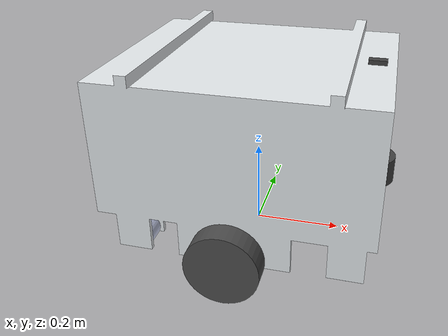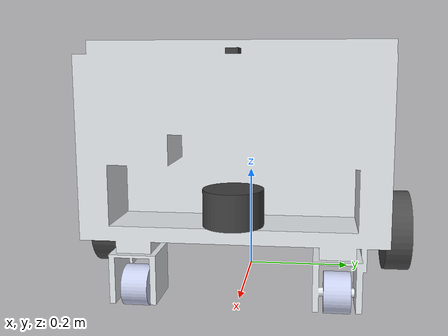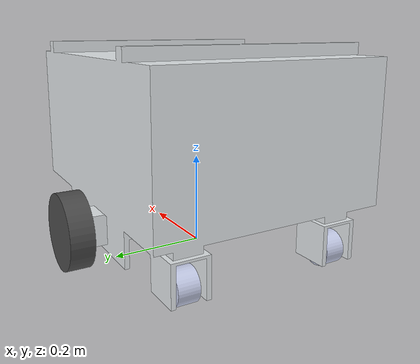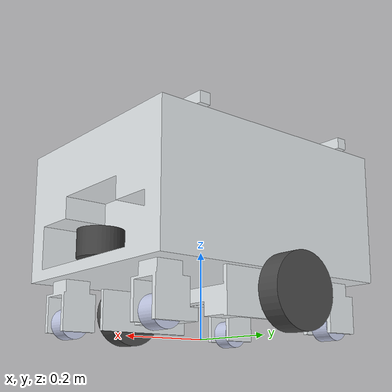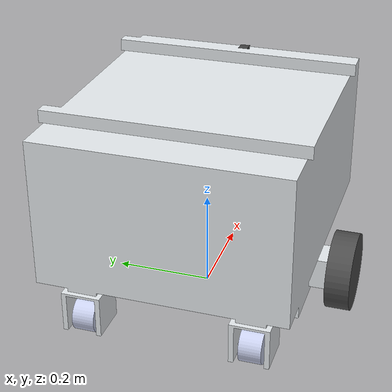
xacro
<?xml version="1.0" ?>
<robot name="custom_amr" xmlns:xacro="http://ros.org/wiki/xacro">
  <xacro:include filename="$(find amr_description)/urdf/common_properties.xacro"/>
  <xacro:include filename="$(find amr_description)/urdf/amr_description.gazebo.xacro"/>

  <link
    name="base_link">
    <inertial>
      <origin
        xyz="-0.013982 5.5511E-17 0.27616"
        rpy="0 0 0" />
      <mass
        value="240.87" />
      <inertia
        ixx="7.4151"
        ixy="1.9392E-15"
        ixz="-0.1905"
        iyy="8.8252"
        iyz="1.029E-16"
        izz="11.883" />
    </inertial>
    <visual>
      <origin
        xyz="0 0 0"
        rpy="0 0 0" />
      <geometry>
        <mesh
          filename="package://amr_description/meshes_2/base_link.STL" />
      </geometry>
      <material
        name="">
        <color
          rgba="0.89804 0.91765 0.92941 1" />
      </material>
    </visual>
    <collision>
      <origin
        xyz="0 0 0"
        rpy="0 0 0" />
      <geometry>
        <mesh
          filename="package://amr_description/meshes_2/base_link.STL" />
      </geometry>
    </collision>
  </link>
<!-- Left Wheels -->
<joint
    name="left_wheel_joint"
    type="continuous">
    <origin
      xyz="0 0.295 0.0795114208001933"
      rpy="0 0 0" />
    <parent
      link="base_link" />
    <child
      link="left_wheel" />
    <axis
      xyz="0 1 0" />
  </joint>

<link
name="left_wheel">
<inertial>
  <origin
    xyz="-5.55111512312578E-17 -0.000574712643678116 0"
    rpy="0 0 0" />
  <mass
    value="1.02494460323367" />
  <inertia
    ixx="0.00183849946005578"
    ixy="2.56637004041976E-19"
    ixz="6.63260987832101E-22"
    iyy="0.0032231268004275"
    iyz="-2.35172790845663E-21"
    izz="0.00183849946005578" />
</inertial>
<visual>
  <origin
    xyz="0 0 0"
    rpy="0 0 0" />
  <geometry>
    <mesh
      filename="package://amr_description/meshes_2/left_wheel.STL" />
  </geometry>
  <material
    name="">
    <color
      rgba="0.298039215686275 0.298039215686275 0.298039215686275 1" />
  </material>
</visual>
<collision>
  <origin
    xyz="0 0 0"
    rpy="0 0 0" />
  <geometry>
    <mesh
      filename="package://amr_description/meshes_2/left_wheel.STL" />
  </geometry>
</collision>
</link>

<!-- Right Wheel -->
<joint
    name="right_wheel_joint"
    type="continuous">
    <origin
      xyz="0 -0.295 0.0795114208001933"
      rpy="0 0 0" />
    <parent
      link="base_link" />
    <child
      link="right_wheel" />
    <axis
      xyz="0 1 0" />
  </joint>

<link
name="right_wheel">
<inertial>
  <origin
    xyz="0 0.000574712643678033 0"
    rpy="0 0 0" />
  <mass
    value="1.02494460323367" />
  <inertia
    ixx="0.00183849946005574"
    ixy="2.53679317773136E-19"
    ixz="-2.77800336919809E-20"
    iyy="0.0032231268004275"
    iyz="2.72448212357285E-20"
    izz="0.00183849946005574" />
</inertial>
<visual>
  <origin
    xyz="0 0 0"
    rpy="0 0 0" />
  <geometry>
    <mesh
      filename="package://amr_description/meshes_2/right_wheel.STL" />
  </geometry>
  <material
    name="">
    <color
      rgba="0.298039215686275 0.298039215686275 0.298039215686275 1" />
  </material>
</visual>
<collision>
  <origin
    xyz="0 0 0"
    rpy="0 0 0" />
  <geometry>
    <mesh
      filename="package://amr_description/meshes_2/right_wheel.STL" />
  </geometry>
</collision>
</link>

<!-- Casters front, back, right, left-->

<link
    name="front_right_caster_link">
    <inertial>
      <origin
        xyz="0 0 0"
        rpy="0 0 0" />
      <mass
        value="0.165228138624738" />
      <inertia
        ixx="8.08068865461608E-05"
        ixy="4.79259162819995E-21"
        ixz="1.82505431197023E-35"
        iyy="0.000105849276306473"
        iyz="8.39342182092113E-20"
        izz="8.08068865461609E-05" />
    </inertial>
    <visual>
      <origin
        xyz="0 0 0"
        rpy="0 0 0" />
      <geometry>
        <mesh
          filename="package://amr_description/meshes_2/front_right_caster_link.STL" />
      </geometry>
      <material
        name="">
        <color
          rgba="0.792156862745098 0.819607843137255 0.933333333333333 1" />
      </material>
    </visual>
    <collision>
      <origin
        xyz="0 0 0"
        rpy="0 0 0" />
      <geometry>
        <mesh
          filename="package://amr_description/meshes_2/front_right_caster_link.STL" />
      </geometry>
    </collision>
  </link>
  <joint
    name="front_right_caster_joint"
    type="fixed">
    <origin
      xyz="0.24 -0.170500000000001 0.0345114208001912"
      rpy="0 0 0" />
    <parent
      link="base_link" />
    <child
      link="front_right_caster_link" />
    <axis
      xyz="0 0 0" />
  </joint>
  <link
    name="front_left_caster_link">
    <inertial>
      <origin
        xyz="0 -5.55111512312578E-17 -2.77555756156289E-17"
        rpy="0 0 0" />
      <mass
        value="0.165228138624738" />
      <inertia
        ixx="8.08068865461611E-05"
        ixy="7.41309980876794E-21"
        ixz="-5.57366493454268E-37"
        iyy="0.000105849276306473"
        iyz="8.39342182092112E-20"
        izz="8.08068865461611E-05" />
    </inertial>
    <visual>
      <origin
        xyz="0 0 0"
        rpy="0 0 0" />
      <geometry>
        <mesh
          filename="package://amr_description/meshes_2/front_left_caster_link.STL" />
      </geometry>
      <material
        name="">
        <color
          rgba="0.792156862745098 0.819607843137255 0.933333333333333 1" />
      </material>
    </visual>
    <collision>
      <origin
        xyz="0 0 0"
        rpy="0 0 0" />
      <geometry>
        <mesh
          filename="package://amr_description/meshes_2/front_left_caster_link.STL" />
      </geometry>
    </collision>
  </link>
  <joint
    name="front_left_caster_joint"
    type="fixed">
    <origin
      xyz="0.24 0.170499999999999 0.0345114208001924"
      rpy="0 0 0" />
    <parent
      link="base_link" />
    <child
      link="front_left_caster_link" />
    <axis
      xyz="0 0 0" />
  </joint>
  <link
    name="back_right_caster_link">
    <inertial>
      <origin
        xyz="0 0 0"
        rpy="0 0 0" />
      <mass
        value="0.165228138624738" />
      <inertia
        ixx="8.08068865461608E-05"
        ixy="4.63377295058926E-21"
        ixz="1.518460617739E-35"
        iyy="0.000105849276306473"
        iyz="8.2067080220647E-20"
        izz="8.08068865461608E-05" />
    </inertial>
    <visual>
      <origin
        xyz="0 0 0"
        rpy="0 0 0" />
      <geometry>
        <mesh
          filename="package://amr_description/meshes_2/back_right_caster_link.STL" />
      </geometry>
      <material
        name="">
        <color
          rgba="0.792156862745098 0.819607843137255 0.933333333333333 1" />
      </material>
    </visual>
    <collision>
      <origin
        xyz="0 0 0"
        rpy="0 0 0" />
      <geometry>
        <mesh
          filename="package://amr_description/meshes_2/back_right_caster_link.STL" />
      </geometry>
    </collision>
  </link>
  <joint
    name="back_right_caster_joint"
    type="fixed">
    <origin
      xyz="-0.24 -0.1695 0.0345114208001912"
      rpy="0 0 0" />
    <parent
      link="base_link" />
    <child
      link="back_right_caster_link" />
    <axis
      xyz="0 0 0" />
  </joint>
  <link
    name="back_left_caster_link">
    <inertial>
      <origin
        xyz="0 -5.55111512312578E-17 -2.77555756156289E-17"
        rpy="0 0 0" />
      <mass
        value="0.165228138624738" />
      <inertia
        ixx="8.08068865461611E-05"
        ixy="4.63377295058926E-21"
        ixz="1.4714408437061E-35"
        iyy="0.000105849276306473"
        iyz="7.95259813788841E-20"
        izz="8.08068865461611E-05" />
    </inertial>
    <visual>
      <origin
        xyz="0 0 0"
        rpy="0 0 0" />
      <geometry>
        <mesh
          filename="package://amr_description/meshes_2/back_left_caster_link.STL" />
      </geometry>
      <material
        name="">
        <color
          rgba="0.792156862745098 0.819607843137255 0.933333333333333 1" />
      </material>
    </visual>
    <collision>
      <origin
        xyz="0 0 0"
        rpy="0 0 0" />
      <geometry>
        <mesh
          filename="package://amr_description/meshes_2/back_left_caster_link.STL" />
      </geometry>
    </collision>
  </link>
  <joint
    name="back_left_caster_joint"
    type="fixed">
    <origin
      xyz="-0.24 0.170499999999999 0.0345114208001924"
      rpy="0 0 0" />
    <parent
      link="base_link" />
    <child
      link="back_left_caster_link" />
    <axis
      xyz="0 0 0" />
  </joint>

  <!-- Sensors Lasers and IMU link and joints -->

  <link
    name="laser_link">
    <inertial>
      <origin
        xyz="0 0 0.000306122448979651"
        rpy="0 0 0" />
      <mass
        value="0.471050402479253" />
      <inertia
        ixx="0.00044144544382281"
        ixy="1.20370621524202E-35"
        ixz="-1.66168069770557E-36"
        iyy="0.00044144544382281"
        iyz="-1.14537506940206E-21"
        izz="0.000600348931323048" />
    </inertial>
    <visual>
      <origin
        xyz="0 0 0"
        rpy="0 0 0" />
      <geometry>
        <mesh
          filename="package://amr_description/meshes_2/laser_link.STL" />
      </geometry>
      <material
        name="">
        <color
          rgba="0.250980392156863 0.250980392156863 0.250980392156863 1" />
      </material>
    </visual>
    <collision>
      <origin
        xyz="0 0 0"
        rpy="0 0 0" />
      <geometry>
        <mesh
          filename="package://amr_description/meshes_2/laser_link.STL" />
      </geometry>
    </collision>
  </link>
  <joint
    name="laser_joint"
    type="fixed">
    <origin
      xyz="0.27 0 0.184511420800193"
      rpy="0 0 0" />
    <parent
      link="base_link" />
    <child
      link="laser_link" />
    <axis
      xyz="0 0 0" />
  </joint>
  <link
    name="imu_link">
    <inertial>
      <origin
        xyz="0 0 0.000129053354769315"
        rpy="0 0 0" />
      <mass
        value="0.00775944693666731" />
      <inertia
        ixx="3.34029369368266E-07"
        ixy="2.68839162291071E-21"
        ixz="-8.24730110602688E-21"
        iyy="1.15002936936827E-06"
        iyz="-1.11145915353818E-21"
        izz="1.35499308670834E-06" />
    </inertial>
    <visual>
      <origin
        xyz="0 0 0"
        rpy="0 0 0" />
      <geometry>
        <mesh
          filename="package://amr_description/meshes_2/imu_link.STL" />
      </geometry>
      <material
        name="">
        <color
          rgba="0.250980392156863 0.250980392156863 0.250980392156863 1" />
      </material>
    </visual>
    <collision>
      <origin
        xyz="0 0 0"
        rpy="0 0 0" />
      <geometry>
        <mesh
          filename="package://amr_description/meshes_2/imu_link.STL" />
      </geometry>
    </collision>
  </link>
  <joint
    name="imu_joint"
    type="fixed">
    <origin
      xyz="0.259999999999996 0 0.434511420800194"
      rpy="0 0 0" />
    <parent
      link="base_link" />
    <child
      link="imu_link" />
    <axis
      xyz="0 0 0" />
  </joint>

</robot>
